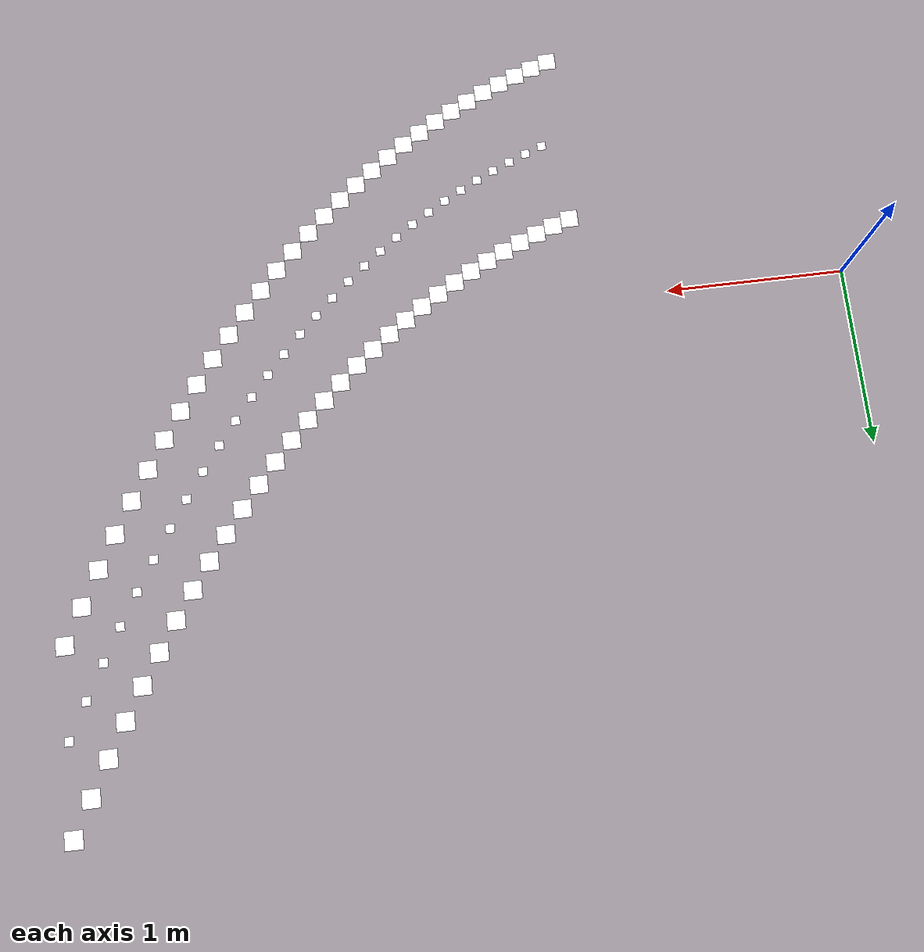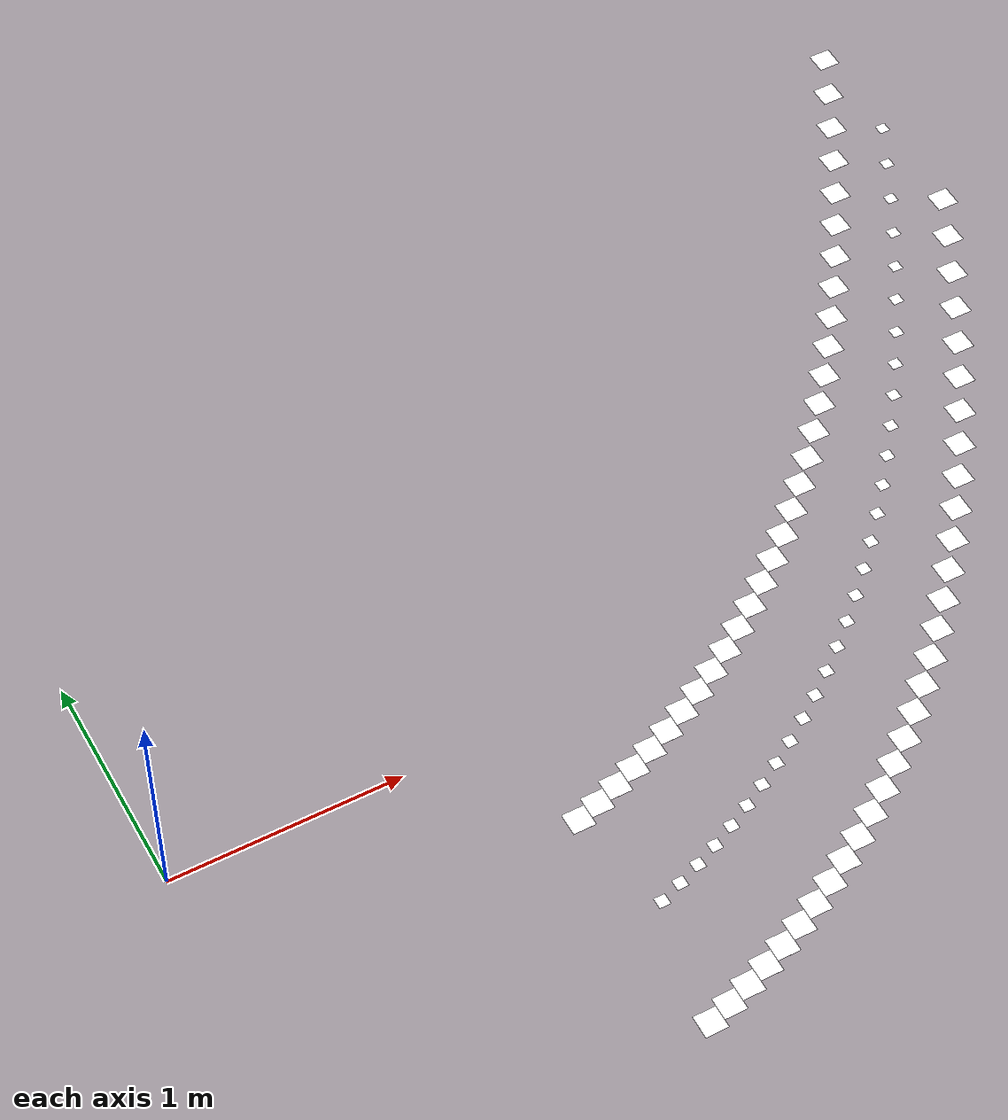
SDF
<sdf version="1.5">
 <model name="AutoNOMOS_mini_intersection">
  <static>true</static>
  <link name="L2_p61">
   <pose>1.5 -0.501 0.011 0 0 0</pose>
   <visual name="visual_L2_p61">
    <cast_shadows>false</cast_shadows>
    <geometry><plane><normal>0 0 1</normal><size>.1 .1</size></plane></geometry>
    <material>
     <ambient>0 0 0 0</ambient>
     <diffuse>1 1 1 0</diffuse>
     <specular>0 0 0 0</specular>
     <emissive>0 0 0 0</emissive>
    </material>
   </visual>
  </link>
  <link name="L3_p61">
   <pose>1.5 -1.501 0.011 0 0 0</pose>
   <visual name="visual_L3_p61">
    <cast_shadows>false</cast_shadows>
    <geometry><plane><normal>0 0 1</normal><size>.1 .1</size></plane></geometry>
    <material>
     <ambient>0 0 0 0</ambient>
     <diffuse>1 1 1 0</diffuse>
     <specular>0 0 0 0</specular>
     <emissive>0 0 0 0</emissive>
    </material>
   </visual>
  </link>
  <link name="L1_p62">
   <pose>1.6 -0.968 0.011 0 0 0</pose>
   <visual name="visual_L1_p62">
    <cast_shadows>false</cast_shadows>
    <geometry><plane><normal>0 0 1</normal><size>.05 .05</size></plane></geometry>
    <material>
     <ambient>0 0 0 0</ambient>
     <diffuse>1 1 1 0</diffuse>
     <specular>0 0 0 0</specular>
     <emissive>0 0 0 0</emissive>
    </material>
   </visual>
  </link>
  <link name="L2_p62">
   <pose>1.6 -0.468 0.011 0 0 0</pose>
   <visual name="visual_L2_p62">
    <cast_shadows>false</cast_shadows>
    <geometry><plane><normal>0 0 1</normal><size>.1 .1</size></plane></geometry>
    <material>
     <ambient>0 0 0 0</ambient>
     <diffuse>1 1 1 0</diffuse>
     <specular>0 0 0 0</specular>
     <emissive>0 0 0 0</emissive>
    </material>
   </visual>
  </link>
  <link name="L3_p62">
   <pose>1.6 -1.468 0.011 0 0 0</pose>
   <visual name="visual_L3_p62">
    <cast_shadows>false</cast_shadows>
    <geometry><plane><normal>0 0 1</normal><size>.1 .1</size></plane></geometry>
    <material>
     <ambient>0 0 0 0</ambient>
     <diffuse>1 1 1 0</diffuse>
     <specular>0 0 0 0</specular>
     <emissive>0 0 0 0</emissive>
    </material>
   </visual>
  </link>
  <link name="L1_p63">
   <pose>1.7 -0.931 0.011 0 0 0</pose>
   <visual name="visual_L1_p63">
    <cast_shadows>false</cast_shadows>
    <geometry><plane><normal>0 0 1</normal><size>.05 .05</size></plane></geometry>
    <material>
     <ambient>0 0 0 0</ambient>
     <diffuse>1 1 1 0</diffuse>
     <specular>0 0 0 0</specular>
     <emissive>0 0 0 0</emissive>
    </material>
   </visual>
  </link>
  <link name="L2_p63">
   <pose>1.7 -0.431 0.011 0 0 0</pose>
   <visual name="visual_L2_p63">
    <cast_shadows>false</cast_shadows>
    <geometry><plane><normal>0 0 1</normal><size>.1 .1</size></plane></geometry>
    <material>
     <ambient>0 0 0 0</ambient>
     <diffuse>1 1 1 0</diffuse>
     <specular>0 0 0 0</specular>
     <emissive>0 0 0 0</emissive>
    </material>
   </visual>
  </link>
  <link name="L3_p63">
   <pose>1.7 -1.431 0.011 0 0 0</pose>
   <visual name="visual_L3_p63">
    <cast_shadows>false</cast_shadows>
    <geometry><plane><normal>0 0 1</normal><size>.1 .1</size></plane></geometry>
    <material>
     <ambient>0 0 0 0</ambient>
     <diffuse>1 1 1 0</diffuse>
     <specular>0 0 0 0</specular>
     <emissive>0 0 0 0</emissive>
    </material>
   </visual>
  </link>
  <link name="L1_p64">
   <pose>1.8 -0.891 0.011 0 0 0</pose>
   <visual name="visual_L1_p64">
    <cast_shadows>false</cast_shadows>
    <geometry><plane><normal>0 0 1</normal><size>.05 .05</size></plane></geometry>
    <material>
     <ambient>0 0 0 0</ambient>
     <diffuse>1 1 1 0</diffuse>
     <specular>0 0 0 0</specular>
     <emissive>0 0 0 0</emissive>
    </material>
   </visual>
  </link>
  <link name="L2_p64">
   <pose>1.8 -0.391 0.011 0 0 0</pose>
   <visual name="visual_L2_p64">
    <cast_shadows>false</cast_shadows>
    <geometry><plane><normal>0 0 1</normal><size>.1 .1</size></plane></geometry>
    <material>
     <ambient>0 0 0 0</ambient>
     <diffuse>1 1 1 0</diffuse>
     <specular>0 0 0 0</specular>
     <emissive>0 0 0 0</emissive>
    </material>
   </visual>
  </link>
  <link name="L3_p64">
   <pose>1.8 -1.391 0.011 0 0 0</pose>
   <visual name="visual_L3_p64">
    <cast_shadows>false</cast_shadows>
    <geometry><plane><normal>0 0 1</normal><size>.1 .1</size></plane></geometry>
    <material>
     <ambient>0 0 0 0</ambient>
     <diffuse>1 1 1 0</diffuse>
     <specular>0 0 0 0</specular>
     <emissive>0 0 0 0</emissive>
    </material>
   </visual>
  </link>
  <link name="L1_p65">
   <pose>1.9 -0.848 0.011 0 0 0</pose>
   <visual name="visual_L1_p65">
    <cast_shadows>false</cast_shadows>
    <geometry><plane><normal>0 0 1</normal><size>.05 .05</size></plane></geometry>
    <material>
     <ambient>0 0 0 0</ambient>
     <diffuse>1 1 1 0</diffuse>
     <specular>0 0 0 0</specular>
     <emissive>0 0 0 0</emissive>
    </material>
   </visual>
  </link>
  <link name="L2_p65">
   <pose>1.9 -0.348 0.011 0 0 0</pose>
   <visual name="visual_L2_p65">
    <cast_shadows>false</cast_shadows>
    <geometry><plane><normal>0 0 1</normal><size>.1 .1</size></plane></geometry>
    <material>
     <ambient>0 0 0 0</ambient>
     <diffuse>1 1 1 0</diffuse>
     <specular>0 0 0 0</specular>
     <emissive>0 0 0 0</emissive>
    </material>
   </visual>
  </link>
  <link name="L3_p65">
   <pose>1.9 -1.348 0.011 0 0 0</pose>
   <visual name="visual_L3_p65">
    <cast_shadows>false</cast_shadows>
    <geometry><plane><normal>0 0 1</normal><size>.1 .1</size></plane></geometry>
    <material>
     <ambient>0 0 0 0</ambient>
     <diffuse>1 1 1 0</diffuse>
     <specular>0 0 0 0</specular>
     <emissive>0 0 0 0</emissive>
    </material>
   </visual>
  </link>
  <link name="L1_p66">
   <pose>2 -0.801 0.011 0 0 0</pose>
   <visual name="visual_L1_p66">
    <cast_shadows>false</cast_shadows>
    <geometry><plane><normal>0 0 1</normal><size>.05 .05</size></plane></geometry>
    <material>
     <ambient>0 0 0 0</ambient>
     <diffuse>1 1 1 0</diffuse>
     <specular>0 0 0 0</specular>
     <emissive>0 0 0 0</emissive>
    </material>
   </visual>
  </link>
  <link name="L2_p66">
   <pose>2 -0.301 0.011 0 0 0</pose>
   <visual name="visual_L2_p66">
    <cast_shadows>false</cast_shadows>
    <geometry><plane><normal>0 0 1</normal><size>.1 .1</size></plane></geometry>
    <material>
     <ambient>0 0 0 0</ambient>
     <diffuse>1 1 1 0</diffuse>
     <specular>0 0 0 0</specular>
     <emissive>0 0 0 0</emissive>
    </material>
   </visual>
  </link>
  <link name="L3_p66">
   <pose>2 -1.301 0.011 0 0 0</pose>
   <visual name="visual_L3_p66">
    <cast_shadows>false</cast_shadows>
    <geometry><plane><normal>0 0 1</normal><size>.1 .1</size></plane></geometry>
    <material>
     <ambient>0 0 0 0</ambient>
     <diffuse>1 1 1 0</diffuse>
     <specular>0 0 0 0</specular>
     <emissive>0 0 0 0</emissive>
    </material>
   </visual>
  </link>
  <link name="L1_p67">
   <pose>2.1 -0.75 0.011 0 0 0</pose>
   <visual name="visual_L1_p67">
    <cast_shadows>false</cast_shadows>
    <geometry><plane><normal>0 0 1</normal><size>.05 .05</size></plane></geometry>
    <material>
     <ambient>0 0 0 0</ambient>
     <diffuse>1 1 1 0</diffuse>
     <specular>0 0 0 0</specular>
     <emissive>0 0 0 0</emissive>
    </material>
   </visual>
  </link>
  <link name="L2_p67">
   <pose>2.1 -0.25 0.011 0 0 0</pose>
   <visual name="visual_L2_p67">
    <cast_shadows>false</cast_shadows>
    <geometry><plane><normal>0 0 1</normal><size>.1 .1</size></plane></geometry>
    <material>
     <ambient>0 0 0 0</ambient>
     <diffuse>1 1 1 0</diffuse>
     <specular>0 0 0 0</specular>
     <emissive>0 0 0 0</emissive>
    </material>
   </visual>
  </link>
  <link name="L3_p67">
   <pose>2.1 -1.25 0.011 0 0 0</pose>
   <visual name="visual_L3_p67">
    <cast_shadows>false</cast_shadows>
    <geometry><plane><normal>0 0 1</normal><size>.1 .1</size></plane></geometry>
    <material>
     <ambient>0 0 0 0</ambient>
     <diffuse>1 1 1 0</diffuse>
     <specular>0 0 0 0</specular>
     <emissive>0 0 0 0</emissive>
    </material>
   </visual>
  </link>
  <link name="L1_p68">
   <pose>2.2 -0.695 0.011 0 0 0</pose>
   <visual name="visual_L1_p68">
    <cast_shadows>false</cast_shadows>
    <geometry><plane><normal>0 0 1</normal><size>.05 .05</size></plane></geometry>
    <material>
     <ambient>0 0 0 0</ambient>
     <diffuse>1 1 1 0</diffuse>
     <specular>0 0 0 0</specular>
     <emissive>0 0 0 0</emissive>
    </material>
   </visual>
  </link>
  <link name="L2_p68">
   <pose>2.2 -0.195 0.011 0 0 0</pose>
   <visual name="visual_L2_p68">
    <cast_shadows>false</cast_shadows>
    <geometry><plane><normal>0 0 1</normal><size>.1 .1</size></plane></geometry>
    <material>
     <ambient>0 0 0 0</ambient>
     <diffuse>1 1 1 0</diffuse>
     <specular>0 0 0 0</specular>
     <emissive>0 0 0 0</emissive>
    </material>
   </visual>
  </link>
  <link name="L3_p68">
   <pose>2.2 -1.195 0.011 0 0 0</pose>
   <visual name="visual_L3_p68">
    <cast_shadows>false</cast_shadows>
    <geometry><plane><normal>0 0 1</normal><size>.1 .1</size></plane></geometry>
    <material>
     <ambient>0 0 0 0</ambient>
     <diffuse>1 1 1 0</diffuse>
     <specular>0 0 0 0</specular>
     <emissive>0 0 0 0</emissive>
    </material>
   </visual>
  </link>
  <link name="L1_p69">
   <pose>2.3 -0.636 0.011 0 0 0</pose>
   <visual name="visual_L1_p69">
    <cast_shadows>false</cast_shadows>
    <geometry><plane><normal>0 0 1</normal><size>.05 .05</size></plane></geometry>
    <material>
     <ambient>0 0 0 0</ambient>
     <diffuse>1 1 1 0</diffuse>
     <specular>0 0 0 0</specular>
     <emissive>0 0 0 0</emissive>
    </material>
   </visual>
  </link>
  <link name="L2_p69">
   <pose>2.3 -0.136 0.011 0 0 0</pose>
   <visual name="visual_L2_p69">
    <cast_shadows>false</cast_shadows>
    <geometry><plane><normal>0 0 1</normal><size>.1 .1</size></plane></geometry>
    <material>
     <ambient>0 0 0 0</ambient>
     <diffuse>1 1 1 0</diffuse>
     <specular>0 0 0 0</specular>
     <emissive>0 0 0 0</emissive>
    </material>
   </visual>
  </link>
  <link name="L3_p69">
   <pose>2.3 -1.136 0.011 0 0 0</pose>
   <visual name="visual_L3_p69">
    <cast_shadows>false</cast_shadows>
    <geometry><plane><normal>0 0 1</normal><size>.1 .1</size></plane></geometry>
    <material>
     <ambient>0 0 0 0</ambient>
     <diffuse>1 1 1 0</diffuse>
     <specular>0 0 0 0</specular>
     <emissive>0 0 0 0</emissive>
    </material>
   </visual>
  </link>
  <link name="L1_p70">
   <pose>2.4 -0.573 0.011 0 0 0</pose>
   <visual name="visual_L1_p70">
    <cast_shadows>false</cast_shadows>
    <geometry><plane><normal>0 0 1</normal><size>.05 .05</size></plane></geometry>
    <material>
     <ambient>0 0 0 0</ambient>
     <diffuse>1 1 1 0</diffuse>
     <specular>0 0 0 0</specular>
     <emissive>0 0 0 0</emissive>
    </material>
   </visual>
  </link>
  <link name="L2_p70">
   <pose>2.4 -0.073 0.011 0 0 0</pose>
   <visual name="visual_L2_p70">
    <cast_shadows>false</cast_shadows>
    <geometry><plane><normal>0 0 1</normal><size>.1 .1</size></plane></geometry>
    <material>
     <ambient>0 0 0 0</ambient>
     <diffuse>1 1 1 0</diffuse>
     <specular>0 0 0 0</specular>
     <emissive>0 0 0 0</emissive>
    </material>
   </visual>
  </link>
  <link name="L3_p70">
   <pose>2.4 -1.073 0.011 0 0 0</pose>
   <visual name="visual_L3_p70">
    <cast_shadows>false</cast_shadows>
    <geometry><plane><normal>0 0 1</normal><size>.1 .1</size></plane></geometry>
    <material>
     <ambient>0 0 0 0</ambient>
     <diffuse>1 1 1 0</diffuse>
     <specular>0 0 0 0</specular>
     <emissive>0 0 0 0</emissive>
    </material>
   </visual>
  </link>
  <link name="L1_p71">
   <pose>2.5 -0.505 0.011 0 0 0</pose>
   <visual name="visual_L1_p71">
    <cast_shadows>false</cast_shadows>
    <geometry><plane><normal>0 0 1</normal><size>.05 .05</size></plane></geometry>
    <material>
     <ambient>0 0 0 0</ambient>
     <diffuse>1 1 1 0</diffuse>
     <specular>0 0 0 0</specular>
     <emissive>0 0 0 0</emissive>
    </material>
   </visual>
  </link>
  <link name="L2_p71">
   <pose>2.5 -0.005 0.011 0 0 0</pose>
   <visual name="visual_L2_p71">
    <cast_shadows>false</cast_shadows>
    <geometry><plane><normal>0 0 1</normal><size>.1 .1</size></plane></geometry>
    <material>
     <ambient>0 0 0 0</ambient>
     <diffuse>1 1 1 0</diffuse>
     <specular>0 0 0 0</specular>
     <emissive>0 0 0 0</emissive>
    </material>
   </visual>
  </link>
  <link name="L3_p71">
   <pose>2.5 -1.005 0.011 0 0 0</pose>
   <visual name="visual_L3_p71">
    <cast_shadows>false</cast_shadows>
    <geometry><plane><normal>0 0 1</normal><size>.1 .1</size></plane></geometry>
    <material>
     <ambient>0 0 0 0</ambient>
     <diffuse>1 1 1 0</diffuse>
     <specular>0 0 0 0</specular>
     <emissive>0 0 0 0</emissive>
    </material>
   </visual>
  </link>
  <link name="L1_p72">
   <pose>2.6 -0.432 0.011 0 0 0</pose>
   <visual name="visual_L1_p72">
    <cast_shadows>false</cast_shadows>
    <geometry><plane><normal>0 0 1</normal><size>.05 .05</size></plane></geometry>
    <material>
     <ambient>0 0 0 0</ambient>
     <diffuse>1 1 1 0</diffuse>
     <specular>0 0 0 0</specular>
     <emissive>0 0 0 0</emissive>
    </material>
   </visual>
  </link>
  <link name="L2_p72">
   <pose>2.6 0.068 0.011 0 0 0</pose>
   <visual name="visual_L2_p72">
    <cast_shadows>false</cast_shadows>
    <geometry><plane><normal>0 0 1</normal><size>.1 .1</size></plane></geometry>
    <material>
     <ambient>0 0 0 0</ambient>
     <diffuse>1 1 1 0</diffuse>
     <specular>0 0 0 0</specular>
     <emissive>0 0 0 0</emissive>
    </material>
   </visual>
  </link>
  <link name="L3_p72">
   <pose>2.6 -0.932 0.011 0 0 0</pose>
   <visual name="visual_L3_p72">
    <cast_shadows>false</cast_shadows>
    <geometry><plane><normal>0 0 1</normal><size>.1 .1</size></plane></geometry>
    <material>
     <ambient>0 0 0 0</ambient>
     <diffuse>1 1 1 0</diffuse>
     <specular>0 0 0 0</specular>
     <emissive>0 0 0 0</emissive>
    </material>
   </visual>
  </link>
  <link name="L1_p73">
   <pose>2.7 -0.354 0.011 0 0 0</pose>
   <visual name="visual_L1_p73">
    <cast_shadows>false</cast_shadows>
    <geometry><plane><normal>0 0 1</normal><size>.05 .05</size></plane></geometry>
    <material>
     <ambient>0 0 0 0</ambient>
     <diffuse>1 1 1 0</diffuse>
     <specular>0 0 0 0</specular>
     <emissive>0 0 0 0</emissive>
    </material>
   </visual>
  </link>
  <link name="L2_p73">
   <pose>2.7 0.146 0.011 0 0 0</pose>
   <visual name="visual_L2_p73">
    <cast_shadows>false</cast_shadows>
    <geometry><plane><normal>0 0 1</normal><size>.1 .1</size></plane></geometry>
    <material>
     <ambient>0 0 0 0</ambient>
     <diffuse>1 1 1 0</diffuse>
     <specular>0 0 0 0</specular>
     <emissive>0 0 0 0</emissive>
    </material>
   </visual>
  </link>
  <link name="L3_p73">
   <pose>2.7 -0.854 0.011 0 0 0</pose>
   <visual name="visual_L3_p73">
    <cast_shadows>false</cast_shadows>
    <geometry><plane><normal>0 0 1</normal><size>.1 .1</size></plane></geometry>
    <material>
     <ambient>0 0 0 0</ambient>
     <diffuse>1 1 1 0</diffuse>
     <specular>0 0 0 0</specular>
     <emissive>0 0 0 0</emissive>
    </material>
   </visual>
  </link>
  <link name="L1_p74">
   <pose>2.8 -0.272 0.011 0 0 0</pose>
   <visual name="visual_L1_p74">
    <cast_shadows>false</cast_shadows>
    <geometry><plane><normal>0 0 1</normal><size>.05 .05</size></plane></geometry>
    <material>
     <ambient>0 0 0 0</ambient>
     <diffuse>1 1 1 0</diffuse>
     <specular>0 0 0 0</specular>
     <emissive>0 0 0 0</emissive>
    </material>
   </visual>
  </link>
  <link name="L2_p74">
   <pose>2.8 0.228 0.011 0 0 0</pose>
   <visual name="visual_L2_p74">
    <cast_shadows>false</cast_shadows>
    <geometry><plane><normal>0 0 1</normal><size>.1 .1</size></plane></geometry>
    <material>
     <ambient>0 0 0 0</ambient>
     <diffuse>1 1 1 0</diffuse>
     <specular>0 0 0 0</specular>
     <emissive>0 0 0 0</emissive>
    </material>
   </visual>
  </link>
  <link name="L3_p74">
   <pose>2.8 -0.772 0.011 0 0 0</pose>
   <visual name="visual_L3_p74">
    <cast_shadows>false</cast_shadows>
    <geometry><plane><normal>0 0 1</normal><size>.1 .1</size></plane></geometry>
    <material>
     <ambient>0 0 0 0</ambient>
     <diffuse>1 1 1 0</diffuse>
     <specular>0 0 0 0</specular>
     <emissive>0 0 0 0</emissive>
    </material>
   </visual>
  </link>
  <link name="L1_p75">
   <pose>2.9 -0.184 0.011 0 0 0</pose>
   <visual name="visual_L1_p75">
    <cast_shadows>false</cast_shadows>
    <geometry><plane><normal>0 0 1</normal><size>.05 .05</size></plane></geometry>
    <material>
     <ambient>0 0 0 0</ambient>
     <diffuse>1 1 1 0</diffuse>
     <specular>0 0 0 0</specular>
     <emissive>0 0 0 0</emissive>
    </material>
   </visual>
  </link>
  <link name="L2_p75">
   <pose>2.9 0.316 0.011 0 0 0</pose>
   <visual name="visual_L2_p75">
    <cast_shadows>false</cast_shadows>
    <geometry><plane><normal>0 0 1</normal><size>.1 .1</size></plane></geometry>
    <material>
     <ambient>0 0 0 0</ambient>
     <diffuse>1 1 1 0</diffuse>
     <specular>0 0 0 0</specular>
     <emissive>0 0 0 0</emissive>
    </material>
   </visual>
  </link>
  <link name="L3_p75">
   <pose>2.9 -0.684 0.011 0 0 0</pose>
   <visual name="visual_L3_p75">
    <cast_shadows>false</cast_shadows>
    <geometry><plane><normal>0 0 1</normal><size>.1 .1</size></plane></geometry>
    <material>
     <ambient>0 0 0 0</ambient>
     <diffuse>1 1 1 0</diffuse>
     <specular>0 0 0 0</specular>
     <emissive>0 0 0 0</emissive>
    </material>
   </visual>
  </link>
  <link name="L1_p76">
   <pose>3 -0.09 0.011 0 0 0</pose>
   <visual name="visual_L1_p76">
    <cast_shadows>false</cast_shadows>
    <geometry><plane><normal>0 0 1</normal><size>.05 .05</size></plane></geometry>
    <material>
     <ambient>0 0 0 0</ambient>
     <diffuse>1 1 1 0</diffuse>
     <specular>0 0 0 0</specular>
     <emissive>0 0 0 0</emissive>
    </material>
   </visual>
  </link>
  <link name="L2_p76">
   <pose>3 0.41 0.011 0 0 0</pose>
   <visual name="visual_L2_p76">
    <cast_shadows>false</cast_shadows>
    <geometry><plane><normal>0 0 1</normal><size>.1 .1</size></plane></geometry>
    <material>
     <ambient>0 0 0 0</ambient>
     <diffuse>1 1 1 0</diffuse>
     <specular>0 0 0 0</specular>
     <emissive>0 0 0 0</emissive>
    </material>
   </visual>
  </link>
  <link name="L3_p76">
   <pose>3 -0.59 0.011 0 0 0</pose>
   <visual name="visual_L3_p76">
    <cast_shadows>false</cast_shadows>
    <geometry><plane><normal>0 0 1</normal><size>.1 .1</size></plane></geometry>
    <material>
     <ambient>0 0 0 0</ambient>
     <diffuse>1 1 1 0</diffuse>
     <specular>0 0 0 0</specular>
     <emissive>0 0 0 0</emissive>
    </material>
   </visual>
  </link>
  <link name="L1_p77">
   <pose>3.1 0.009 0.011 0 0 0</pose>
   <visual name="visual_L1_p77">
    <cast_shadows>false</cast_shadows>
    <geometry><plane><normal>0 0 1</normal><size>.05 .05</size></plane></geometry>
    <material>
     <ambient>0 0 0 0</ambient>
     <diffuse>1 1 1 0</diffuse>
     <specular>0 0 0 0</specular>
     <emissive>0 0 0 0</emissive>
    </material>
   </visual>
  </link>
  <link name="L2_p77">
   <pose>3.1 0.509 0.011 0 0 0</pose>
   <visual name="visual_L2_p77">
    <cast_shadows>false</cast_shadows>
    <geometry><plane><normal>0 0 1</normal><size>.1 .1</size></plane></geometry>
    <material>
     <ambient>0 0 0 0</ambient>
     <diffuse>1 1 1 0</diffuse>
     <specular>0 0 0 0</specular>
     <emissive>0 0 0 0</emissive>
    </material>
   </visual>
  </link>
  <link name="L3_p77">
   <pose>3.1 -0.491 0.011 0 0 0</pose>
   <visual name="visual_L3_p77">
    <cast_shadows>false</cast_shadows>
    <geometry><plane><normal>0 0 1</normal><size>.1 .1</size></plane></geometry>
    <material>
     <ambient>0 0 0 0</ambient>
     <diffuse>1 1 1 0</diffuse>
     <specular>0 0 0 0</specular>
     <emissive>0 0 0 0</emissive>
    </material>
   </visual>
  </link>
  <link name="L1_p78">
   <pose>3.2 0.114 0.011 0 0 0</pose>
   <visual name="visual_L1_p78">
    <cast_shadows>false</cast_shadows>
    <geometry><plane><normal>0 0 1</normal><size>.05 .05</size></plane></geometry>
    <material>
     <ambient>0 0 0 0</ambient>
     <diffuse>1 1 1 0</diffuse>
     <specular>0 0 0 0</specular>
     <emissive>0 0 0 0</emissive>
    </material>
   </visual>
  </link>
  <link name="L2_p78">
   <pose>3.2 0.614 0.011 0 0 0</pose>
   <visual name="visual_L2_p78">
    <cast_shadows>false</cast_shadows>
    <geometry><plane><normal>0 0 1</normal><size>.1 .1</size></plane></geometry>
    <material>
     <ambient>0 0 0 0</ambient>
     <diffuse>1 1 1 0</diffuse>
     <specular>0 0 0 0</specular>
     <emissive>0 0 0 0</emissive>
    </material>
   </visual>
  </link>
  <link name="L3_p78">
   <pose>3.2 -0.386 0.011 0 0 0</pose>
   <visual name="visual_L3_p78">
    <cast_shadows>false</cast_shadows>
    <geometry><plane><normal>0 0 1</normal><size>.1 .1</size></plane></geometry>
    <material>
     <ambient>0 0 0 0</ambient>
     <diffuse>1 1 1 0</diffuse>
     <specular>0 0 0 0</specular>
     <emissive>0 0 0 0</emissive>
    </material>
   </visual>
  </link>
  <link name="L1_p79">
   <pose>3.3 0.225 0.011 0 0 0</pose>
   <visual name="visual_L1_p79">
    <cast_shadows>false</cast_shadows>
    <geometry><plane><normal>0 0 1</normal><size>.05 .05</size></plane></geometry>
    <material>
     <ambient>0 0 0 0</ambient>
     <diffuse>1 1 1 0</diffuse>
     <specular>0 0 0 0</specular>
     <emissive>0 0 0 0</emissive>
    </material>
   </visual>
  </link>
  <link name="L2_p79">
   <pose>3.3 0.725 0.011 0 0 0</pose>
   <visual name="visual_L2_p79">
    <cast_shadows>false</cast_shadows>
    <geometry><plane><normal>0 0 1</normal><size>.1 .1</size></plane></geometry>
    <material>
     <ambient>0 0 0 0</ambient>
     <diffuse>1 1 1 0</diffuse>
     <specular>0 0 0 0</specular>
     <emissive>0 0 0 0</emissive>
    </material>
   </visual>
  </link>
  <link name="L3_p79">
   <pose>3.3 -0.275 0.011 0 0 0</pose>
   <visual name="visual_L3_p79">
    <cast_shadows>false</cast_shadows>
    <geometry><plane><normal>0 0 1</normal><size>.1 .1</size></plane></geometry>
    <material>
     <ambient>0 0 0 0</ambient>
     <diffuse>1 1 1 0</diffuse>
     <specular>0 0 0 0</specular>
     <emissive>0 0 0 0</emissive>
    </material>
   </visual>
  </link>
  <link name="L1_p80">
   <pose>3.4 0.342 0.011 0 0 0</pose>
   <visual name="visual_L1_p80">
    <cast_shadows>false</cast_shadows>
    <geometry><plane><normal>0 0 1</normal><size>.05 .05</size></plane></geometry>
    <material>
     <ambient>0 0 0 0</ambient>
     <diffuse>1 1 1 0</diffuse>
     <specular>0 0 0 0</specular>
     <emissive>0 0 0 0</emissive>
    </material>
   </visual>
  </link>
  <link name="L2_p80">
   <pose>3.4 0.842 0.011 0 0 0</pose>
   <visual name="visual_L2_p80">
    <cast_shadows>false</cast_shadows>
    <geometry><plane><normal>0 0 1</normal><size>.1 .1</size></plane></geometry>
    <material>
     <ambient>0 0 0 0</ambient>
     <diffuse>1 1 1 0</diffuse>
     <specular>0 0 0 0</specular>
     <emissive>0 0 0 0</emissive>
    </material>
   </visual>
  </link>
  <link name="L3_p80">
   <pose>3.4 -0.158 0.011 0 0 0</pose>
   <visual name="visual_L3_p80">
    <cast_shadows>false</cast_shadows>
    <geometry><plane><normal>0 0 1</normal><size>.1 .1</size></plane></geometry>
    <material>
     <ambient>0 0 0 0</ambient>
     <diffuse>1 1 1 0</diffuse>
     <specular>0 0 0 0</specular>
     <emissive>0 0 0 0</emissive>
    </material>
   </visual>
  </link>
  <link name="L1_p81">
   <pose>3.5 0.466 0.011 0 0 0</pose>
   <visual name="visual_L1_p81">
    <cast_shadows>false</cast_shadows>
    <geometry><plane><normal>0 0 1</normal><size>.05 .05</size></plane></geometry>
    <material>
     <ambient>0 0 0 0</ambient>
     <diffuse>1 1 1 0</diffuse>
     <specular>0 0 0 0</specular>
     <emissive>0 0 0 0</emissive>
    </material>
   </visual>
  </link>
  <link name="L2_p81">
   <pose>3.5 0.966 0.011 0 0 0</pose>
   <visual name="visual_L2_p81">
    <cast_shadows>false</cast_shadows>
    <geometry><plane><normal>0 0 1</normal><size>.1 .1</size></plane></geometry>
    <material>
     <ambient>0 0 0 0</ambient>
     <diffuse>1 1 1 0</diffuse>
     <specular>0 0 0 0</specular>
     <emissive>0 0 0 0</emissive>
    </material>
   </visual>
  </link>
  <link name="L3_p81">
   <pose>3.5 -0.034 0.011 0 0 0</pose>
   <visual name="visual_L3_p81">
    <cast_shadows>false</cast_shadows>
    <geometry><plane><normal>0 0 1</normal><size>.1 .1</size></plane></geometry>
    <material>
     <ambient>0 0 0 0</ambient>
     <diffuse>1 1 1 0</diffuse>
     <specular>0 0 0 0</specular>
     <emissive>0 0 0 0</emissive>
    </material>
   </visual>
  </link>
  <link name="L1_p82">
   <pose>3.6 0.596 0.011 0 0 0</pose>
   <visual name="visual_L1_p82">
    <cast_shadows>false</cast_shadows>
    <geometry><plane><normal>0 0 1</normal><size>.05 .05</size></plane></geometry>
    <material>
     <ambient>0 0 0 0</ambient>
     <diffuse>1 1 1 0</diffuse>
     <specular>0 0 0 0</specular>
     <emissive>0 0 0 0</emissive>
    </material>
   </visual>
  </link>
  <link name="L2_p82">
   <pose>3.6 1.096 0.011 0 0 0</pose>
   <visual name="visual_L2_p82">
    <cast_shadows>false</cast_shadows>
    <geometry><plane><normal>0 0 1</normal><size>.1 .1</size></plane></geometry>
    <material>
     <ambient>0 0 0 0</ambient>
     <diffuse>1 1 1 0</diffuse>
     <specular>0 0 0 0</specular>
     <emissive>0 0 0 0</emissive>
    </material>
   </visual>
  </link>
  <link name="L3_p82">
   <pose>3.6 0.096 0.011 0 0 0</pose>
   <visual name="visual_L3_p82">
    <cast_shadows>false</cast_shadows>
    <geometry><plane><normal>0 0 1</normal><size>.1 .1</size></plane></geometry>
    <material>
     <ambient>0 0 0 0</ambient>
     <diffuse>1 1 1 0</diffuse>
     <specular>0 0 0 0</specular>
     <emissive>0 0 0 0</emissive>
    </material>
   </visual>
  </link>
  <link name="L1_p83">
   <pose>3.7 0.733 0.011 0 0 0</pose>
   <visual name="visual_L1_p83">
    <cast_shadows>false</cast_shadows>
    <geometry><plane><normal>0 0 1</normal><size>.05 .05</size></plane></geometry>
    <material>
     <ambient>0 0 0 0</ambient>
     <diffuse>1 1 1 0</diffuse>
     <specular>0 0 0 0</specular>
     <emissive>0 0 0 0</emissive>
    </material>
   </visual>
  </link>
  <link name="L2_p83">
   <pose>3.7 1.233 0.011 0 0 0</pose>
   <visual name="visual_L2_p83">
    <cast_shadows>false</cast_shadows>
    <geometry><plane><normal>0 0 1</normal><size>.1 .1</size></plane></geometry>
    <material>
     <ambient>0 0 0 0</ambient>
     <diffuse>1 1 1 0</diffuse>
     <specular>0 0 0 0</specular>
     <emissive>0 0 0 0</emissive>
    </material>
   </visual>
  </link>
  <link name="L3_p83">
   <pose>3.7 0.233 0.011 0 0 0</pose>
   <visual name="visual_L3_p83">
    <cast_shadows>false</cast_shadows>
    <geometry><plane><normal>0 0 1</normal><size>.1 .1</size></plane></geometry>
    <material>
     <ambient>0 0 0 0</ambient>
     <diffuse>1 1 1 0</diffuse>
     <specular>0 0 0 0</specular>
     <emissive>0 0 0 0</emissive>
    </material>
   </visual>
  </link>
  <link name="L1_p84">
   <pose>3.8 0.877 0.011 0 0 0</pose>
   <visual name="visual_L1_p84">
    <cast_shadows>false</cast_shadows>
    <geometry><plane><normal>0 0 1</normal><size>.05 .05</size></plane></geometry>
    <material>
     <ambient>0 0 0 0</ambient>
     <diffuse>1 1 1 0</diffuse>
     <specular>0 0 0 0</specular>
     <emissive>0 0 0 0</emissive>
    </material>
   </visual>
  </link>
  <link name="L2_p84">
   <pose>3.8 1.377 0.011 0 0 0</pose>
   <visual name="visual_L2_p84">
    <cast_shadows>false</cast_shadows>
    <geometry><plane><normal>0 0 1</normal><size>.1 .1</size></plane></geometry>
    <material>
     <ambient>0 0 0 0</ambient>
     <diffuse>1 1 1 0</diffuse>
     <specular>0 0 0 0</specular>
     <emissive>0 0 0 0</emissive>
    </material>
   </visual>
  </link>
  <link name="L3_p84">
   <pose>3.8 0.377 0.011 0 0 0</pose>
   <visual name="visual_L3_p84">
    <cast_shadows>false</cast_shadows>
    <geometry><plane><normal>0 0 1</normal><size>.1 .1</size></plane></geometry>
    <material>
     <ambient>0 0 0 0</ambient>
     <diffuse>1 1 1 0</diffuse>
     <specular>0 0 0 0</specular>
     <emissive>0 0 0 0</emissive>
    </material>
   </visual>
  </link>
  <link name="L1_p85">
   <pose>3.9 1.028 0.011 0 0 0</pose>
   <visual name="visual_L1_p85">
    <cast_shadows>false</cast_shadows>
    <geometry><plane><normal>0 0 1</normal><size>.05 .05</size></plane></geometry>
    <material>
     <ambient>0 0 0 0</ambient>
     <diffuse>1 1 1 0</diffuse>
     <specular>0 0 0 0</specular>
     <emissive>0 0 0 0</emissive>
    </material>
   </visual>
  </link>
  <link name="L2_p85">
   <pose>3.9 1.528 0.011 0 0 0</pose>
   <visual name="visual_L2_p85">
    <cast_shadows>false</cast_shadows>
    <geometry><plane><normal>0 0 1</normal><size>.1 .1</size></plane></geometry>
    <material>
     <ambient>0 0 0 0</ambient>
     <diffuse>1 1 1 0</diffuse>
     <specular>0 0 0 0</specular>
     <emissive>0 0 0 0</emissive>
    </material>
   </visual>
  </link>
  <link name="L3_p85">
   <pose>3.9 0.528 0.011 0 0 0</pose>
   <visual name="visual_L3_p85">
    <cast_shadows>false</cast_shadows>
    <geometry><plane><normal>0 0 1</normal><size>.1 .1</size></plane></geometry>
    <material>
     <ambient>0 0 0 0</ambient>
     <diffuse>1 1 1 0</diffuse>
     <specular>0 0 0 0</specular>
     <emissive>0 0 0 0</emissive>
    </material>
   </visual>
  </link>
  <link name="L1_p86">
   <pose>4 1.187 0.011 0 0 0</pose>
   <visual name="visual_L1_p86">
    <cast_shadows>false</cast_shadows>
    <geometry><plane><normal>0 0 1</normal><size>.05 .05</size></plane></geometry>
    <material>
     <ambient>0 0 0 0</ambient>
     <diffuse>1 1 1 0</diffuse>
     <specular>0 0 0 0</specular>
     <emissive>0 0 0 0</emissive>
    </material>
   </visual>
  </link>
  <link name="L2_p86">
   <pose>4 1.687 0.011 0 0 0</pose>
   <visual name="visual_L2_p86">
    <cast_shadows>false</cast_shadows>
    <geometry><plane><normal>0 0 1</normal><size>.1 .1</size></plane></geometry>
    <material>
     <ambient>0 0 0 0</ambient>
     <diffuse>1 1 1 0</diffuse>
     <specular>0 0 0 0</specular>
     <emissive>0 0 0 0</emissive>
    </material>
   </visual>
  </link>
  <link name="L3_p86">
   <pose>4 0.687 0.011 0 0 0</pose>
   <visual name="visual_L3_p86">
    <cast_shadows>false</cast_shadows>
    <geometry><plane><normal>0 0 1</normal><size>.1 .1</size></plane></geometry>
    <material>
     <ambient>0 0 0 0</ambient>
     <diffuse>1 1 1 0</diffuse>
     <specular>0 0 0 0</specular>
     <emissive>0 0 0 0</emissive>
    </material>
   </visual>
  </link>
  <link name="L1_p87">
   <pose>4.1 1.352 0.011 0 0 0</pose>
   <visual name="visual_L1_p87">
    <cast_shadows>false</cast_shadows>
    <geometry><plane><normal>0 0 1</normal><size>.05 .05</size></plane></geometry>
    <material>
     <ambient>0 0 0 0</ambient>
     <diffuse>1 1 1 0</diffuse>
     <specular>0 0 0 0</specular>
     <emissive>0 0 0 0</emissive>
    </material>
   </visual>
  </link>
  <link name="L2_p87">
   <pose>4.1 1.852 0.011 0 0 0</pose>
   <visual name="visual_L2_p87">
    <cast_shadows>false</cast_shadows>
    <geometry><plane><normal>0 0 1</normal><size>.1 .1</size></plane></geometry>
    <material>
     <ambient>0 0 0 0</ambient>
     <diffuse>1 1 1 0</diffuse>
     <specular>0 0 0 0</specular>
     <emissive>0 0 0 0</emissive>
    </material>
   </visual>
  </link>
  <link name="L3_p87">
   <pose>4.1 0.852 0.011 0 0 0</pose>
   <visual name="visual_L3_p87">
    <cast_shadows>false</cast_shadows>
    <geometry><plane><normal>0 0 1</normal><size>.1 .1</size></plane></geometry>
    <material>
     <ambient>0 0 0 0</ambient>
     <diffuse>1 1 1 0</diffuse>
     <specular>0 0 0 0</specular>
     <emissive>0 0 0 0</emissive>
    </material>
   </visual>
  </link>
  <link name="L1_p88">
   <pose>4.2 1.526 0.011 0 0 0</pose>
   <visual name="visual_L1_p88">
    <cast_shadows>false</cast_shadows>
    <geometry><plane><normal>0 0 1</normal><size>.05 .05</size></plane></geometry>
    <material>
     <ambient>0 0 0 0</ambient>
     <diffuse>1 1 1 0</diffuse>
     <specular>0 0 0 0</specular>
     <emissive>0 0 0 0</emissive>
    </material>
   </visual>
  </link>
  <link name="L2_p88">
   <pose>4.2 2.026 0.011 0 0 0</pose>
   <visual name="visual_L2_p88">
    <cast_shadows>false</cast_shadows>
    <geometry><plane><normal>0 0 1</normal><size>.1 .1</size></plane></geometry>
    <material>
     <ambient>0 0 0 0</ambient>
     <diffuse>1 1 1 0</diffuse>
     <specular>0 0 0 0</specular>
     <emissive>0 0 0 0</emissive>
    </material>
   </visual>
  </link>
  <link name="L3_p88">
   <pose>4.2 1.026 0.011 0 0 0</pose>
   <visual name="visual_L3_p88">
    <cast_shadows>false</cast_shadows>
    <geometry><plane><normal>0 0 1</normal><size>.1 .1</size></plane></geometry>
    <material>
     <ambient>0 0 0 0</ambient>
     <diffuse>1 1 1 0</diffuse>
     <specular>0 0 0 0</specular>
     <emissive>0 0 0 0</emissive>
    </material>
   </visual>
  </link>
  <link name="L1_p89">
   <pose>4.3 1.707 0.011 0 0 0</pose>
   <visual name="visual_L1_p89">
    <cast_shadows>false</cast_shadows>
    <geometry><plane><normal>0 0 1</normal><size>.05 .05</size></plane></geometry>
    <material>
     <ambient>0 0 0 0</ambient>
     <diffuse>1 1 1 0</diffuse>
     <specular>0 0 0 0</specular>
     <emissive>0 0 0 0</emissive>
    </material>
   </visual>
  </link>
  <link name="L2_p89">
   <pose>4.3 2.207 0.011 0 0 0</pose>
   <visual name="visual_L2_p89">
    <cast_shadows>false</cast_shadows>
    <geometry><plane><normal>0 0 1</normal><size>.1 .1</size></plane></geometry>
    <material>
     <ambient>0 0 0 0</ambient>
     <diffuse>1 1 1 0</diffuse>
     <specular>0 0 0 0</specular>
     <emissive>0 0 0 0</emissive>
    </material>
   </visual>
  </link>
  <link name="L3_p89">
   <pose>4.3 1.207 0.011 0 0 0</pose>
   <visual name="visual_L3_p89">
    <cast_shadows>false</cast_shadows>
    <geometry><plane><normal>0 0 1</normal><size>.1 .1</size></plane></geometry>
    <material>
     <ambient>0 0 0 0</ambient>
     <diffuse>1 1 1 0</diffuse>
     <specular>0 0 0 0</specular>
     <emissive>0 0 0 0</emissive>
    </material>
   </visual>
  </link>
  <link name="L1_p90">
   <pose>4.4 1.897 0.011 0 0 0</pose>
   <visual name="visual_L1_p90">
    <cast_shadows>false</cast_shadows>
    <geometry><plane><normal>0 0 1</normal><size>.05 .05</size></plane></geometry>
    <material>
     <ambient>0 0 0 0</ambient>
     <diffuse>1 1 1 0</diffuse>
     <specular>0 0 0 0</specular>
     <emissive>0 0 0 0</emissive>
    </material>
   </visual>
  </link>
  <link name="L2_p90">
   <pose>4.4 2.397 0.011 0 0 0</pose>
   <visual name="visual_L2_p90">
    <cast_shadows>false</cast_shadows>
    <geometry><plane><normal>0 0 1</normal><size>.1 .1</size></plane></geometry>
    <material>
     <ambient>0 0 0 0</ambient>
     <diffuse>1 1 1 0</diffuse>
     <specular>0 0 0 0</specular>
     <emissive>0 0 0 0</emissive>
    </material>
   </visual>
  </link>
  <link name="L3_p90">
   <pose>4.4 1.397 0.011 0 0 0</pose>
   <visual name="visual_L3_p90">
    <cast_shadows>false</cast_shadows>
    <geometry><plane><normal>0 0 1</normal><size>.1 .1</size></plane></geometry>
    <material>
     <ambient>0 0 0 0</ambient>
     <diffuse>1 1 1 0</diffuse>
     <specular>0 0 0 0</specular>
     <emissive>0 0 0 0</emissive>
    </material>
   </visual>
  </link>
  <link name="L1_p91">
   <pose>4.5 2.094 0.011 0 0 0</pose>
   <visual name="visual_L1_p91">
    <cast_shadows>false</cast_shadows>
    <geometry><plane><normal>0 0 1</normal><size>.05 .05</size></plane></geometry>
    <material>
     <ambient>0 0 0 0</ambient>
     <diffuse>1 1 1 0</diffuse>
     <specular>0 0 0 0</specular>
     <emissive>0 0 0 0</emissive>
    </material>
   </visual>
  </link>
  <link name="L2_p91">
   <pose>4.5 2.594 0.011 0 0 0</pose>
   <visual name="visual_L2_p91">
    <cast_shadows>false</cast_shadows>
    <geometry><plane><normal>0 0 1</normal><size>.1 .1</size></plane></geometry>
    <material>
     <ambient>0 0 0 0</ambient>
     <diffuse>1 1 1 0</diffuse>
     <specular>0 0 0 0</specular>
     <emissive>0 0 0 0</emissive>
    </material>
   </visual>
  </link>
  <link name="L3_p91">
   <pose>4.5 1.594 0.011 0 0 0</pose>
   <visual name="visual_L3_p91">
    <cast_shadows>false</cast_shadows>
    <geometry><plane><normal>0 0 1</normal><size>.1 .1</size></plane></geometry>
    <material>
     <ambient>0 0 0 0</ambient>
     <diffuse>1 1 1 0</diffuse>
     <specular>0 0 0 0</specular>
     <emissive>0 0 0 0</emissive>
    </material>
   </visual>
  </link>
 </model>
</sdf>
